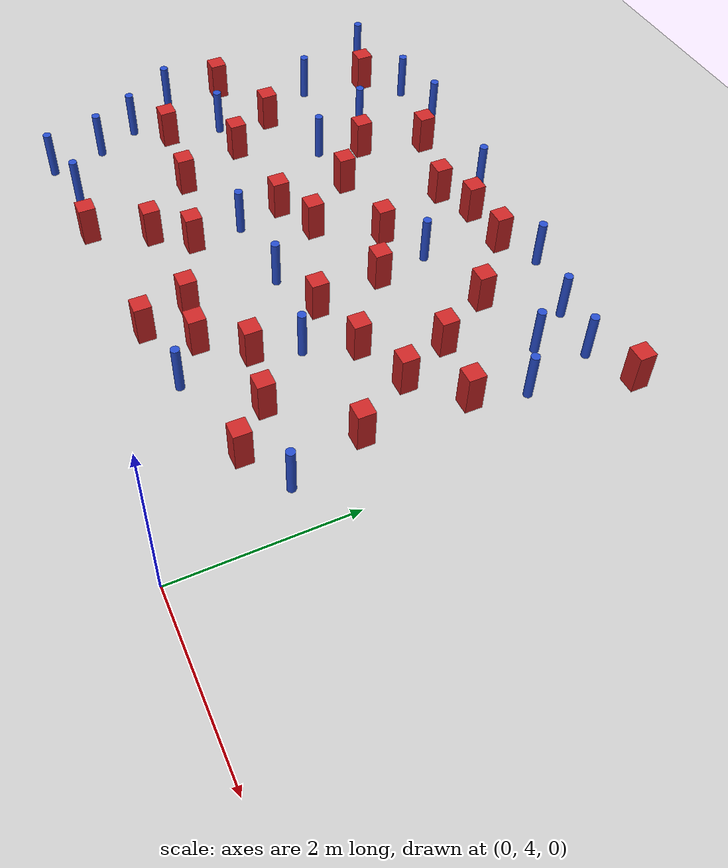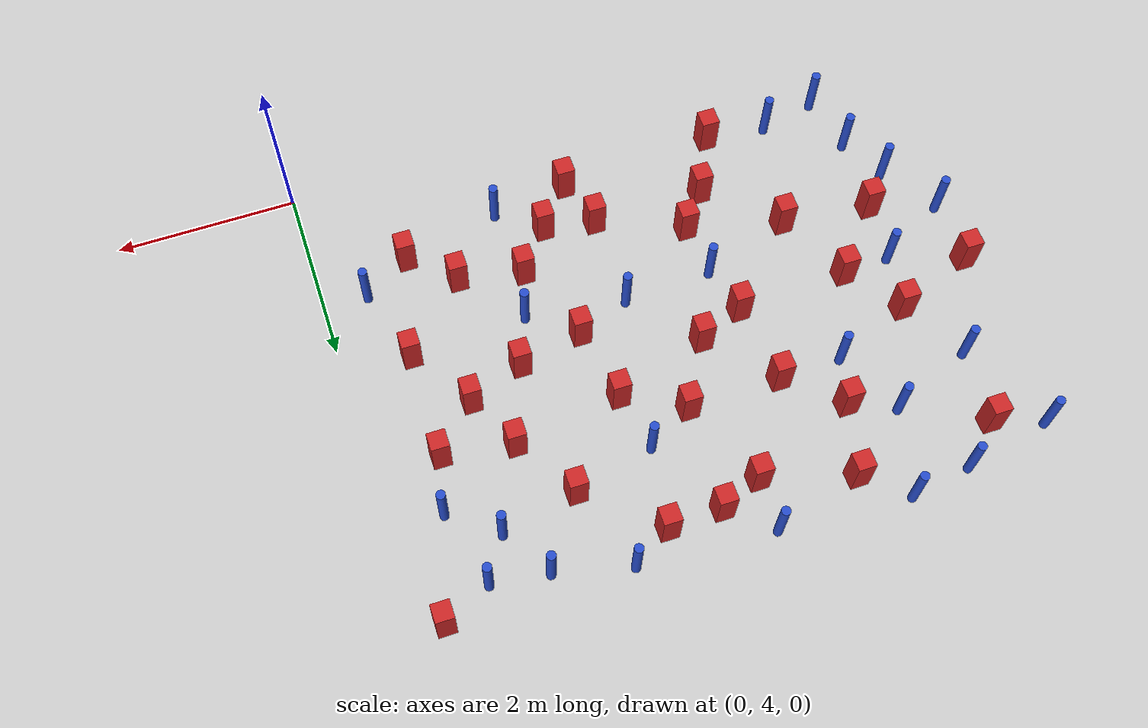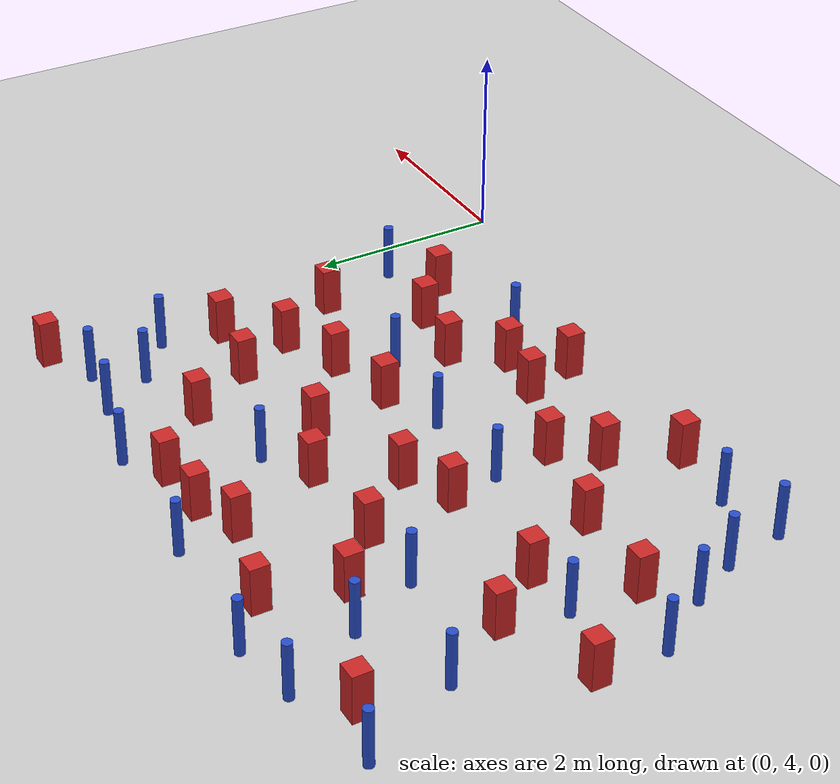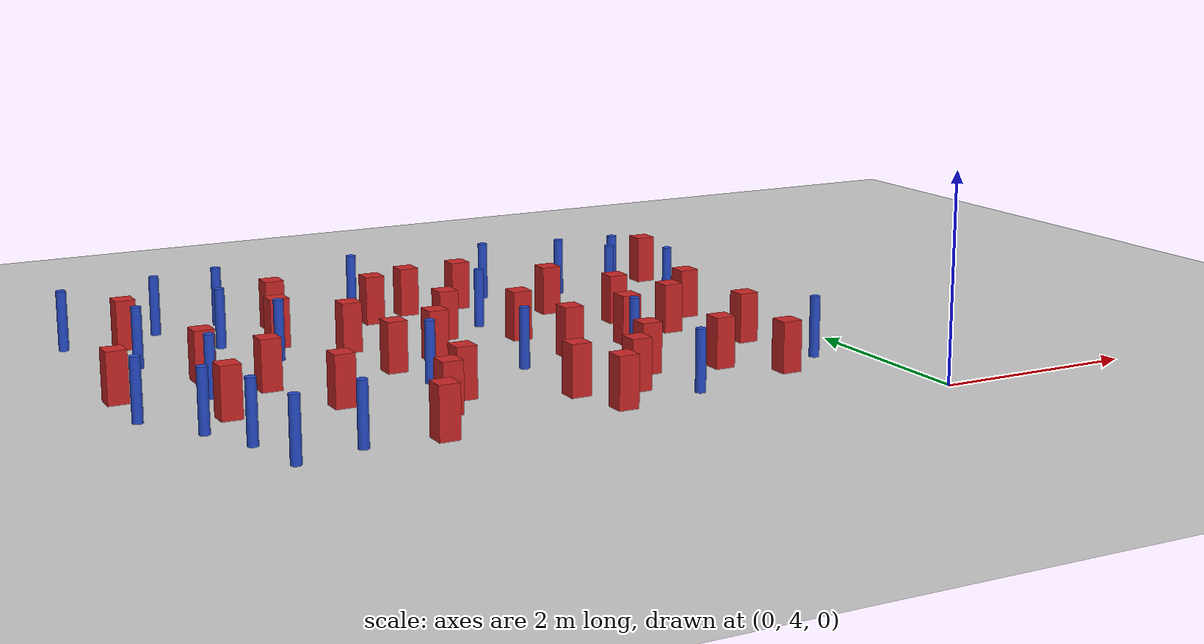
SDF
<sdf version="1.6">
 <world name="default">
  <model name="ground_plane">
   <static>1</static>
   <link name="link">
    <collision name="collision">
     <geometry><plane><normal>0 0 1</normal><size>100 100</size></plane></geometry>
     <surface><friction><ode><mu>100</mu><mu2>50</mu2></ode></friction></surface>
    </collision>
    <visual name="visual">
     <cast_shadows>0</cast_shadows>
     <geometry><plane><normal>0 0 1</normal><size>100 100</size></plane></geometry>
     <material>
      <ambient>1.0 1.0 1.0 1.0</ambient>
      <diffuse>0.8 0.8 0.8 1.0</diffuse>
      <specular>0.01 0.01 0.01 1.000000</specular>
     </material>
    </visual>
   </link>
  </model>
  <model name="square_post_obstacle1">
   <static>true</static>
   <pose>-5.54529154885 6.84833027793 8.22691968438e-08 7.2212513382e-06 -7.54495500217e-07 2.29674213826e-05</pose>
   <link name="link">
    <pose>0 0 0.25 0 -0 0</pose>
    <inertial>
     <mass>100</mass>
     <inertia>
      <ixx>0.166667</ixx>
      <ixy>0</ixy>
      <ixz>0</ixz>
      <iyy>0.166667</iyy>
      <iyz>0</iyz>
      <izz>0.166667</izz>
     </inertia>
    </inertial>
    <collision name="collision"><geometry><box><size>.2 .2 .5</size></box></geometry></collision>
    <visual name="visual">
     <geometry><box><size>.2 .2 .5</size></box></geometry>
     <material>
      <script><name>Gazebo/Red</name><uri>file://media/materials/scripts/gazebo.material</uri></script>
     </material>
    </visual>
   </link>
  </model>
  <model name="pole_obstacle4">
   <static>true</static>
   <pose>-0.492908654023 5.47763895851 2.88873142074e-08 -9.90536689758e-09 4.60219948991e-07 -1.20965994957e-07</pose>
   <link name="link">
    <pose>0 0 0.3 0 -0 0</pose>
    <inertial>
     <mass>1</mass>
     <inertia><ixx>0.145833</ixx><ixy>0</ixy><ixz>0</ixz><iyy>0.145833</iyy><iyz>0</iyz><izz>0.125</izz></inertia>
    </inertial>
    <collision name="collision">
     <geometry><cylinder><radius>0.05</radius><length>.6</length></cylinder></geometry>
    </collision>
    <visual name="visual">
     <geometry><cylinder><radius>0.05</radius><length>.6</length></cylinder></geometry>
     <material>
      <script><name>Gazebo/Blue</name><uri>file://media/materials/scripts/gazebo.material</uri></script>
     </material>
    </visual>
   </link>
  </model>
  <model name="pole_obstacle11">
   <static>true</static>
   <pose>-6.10150141757 6.80704328799 2.88873142074e-08 -9.90536690842e-09 4.60219948965e-07 -1.20965994976e-07</pose>
   <link name="link">
    <pose>0 0 0.3 0 -0 0</pose>
    <inertial>
     <mass>1</mass>
     <inertia><ixx>0.145833</ixx><ixy>0</ixy><ixz>0</ixz><iyy>0.145833</iyy><iyz>0</iyz><izz>0.125</izz></inertia>
    </inertial>
    <collision name="collision">
     <geometry><cylinder><radius>0.05</radius><length>.6</length></cylinder></geometry>
    </collision>
    <visual name="visual">
     <geometry><cylinder><radius>0.05</radius><length>.6</length></cylinder></geometry>
     <material>
      <script><name>Gazebo/Blue</name><uri>file://media/materials/scripts/gazebo.material</uri></script>
     </material>
    </visual>
   </link>
  </model>
  <model name="pole_obstacle13">
   <static>true</static>
   <pose>-1.08018354403 8.55631461394 2.88873142074e-08 -9.90536690474e-09 4.60219948974e-07 -1.2096599497e-07</pose>
   <link name="link">
    <pose>0 0 0.3 0 -0 0</pose>
    <inertial>
     <mass>1</mass>
     <inertia><ixx>0.145833</ixx><ixy>0</ixy><ixz>0</ixz><iyy>0.145833</iyy><iyz>0</iyz><izz>0.125</izz></inertia>
    </inertial>
    <collision name="collision">
     <geometry><cylinder><radius>0.05</radius><length>.6</length></cylinder></geometry>
    </collision>
    <visual name="visual">
     <geometry><cylinder><radius>0.05</radius><length>.6</length></cylinder></geometry>
     <material>
      <script><name>Gazebo/Blue</name><uri>file://media/materials/scripts/gazebo.material</uri></script>
     </material>
    </visual>
   </link>
  </model>
  <model name="pole_obstacle16">
   <static>true</static>
   <pose>-0.794665831123 9.01811968943 2.88873142074e-08 -9.90536690779e-09 4.60219948967e-07 -1.20965994975e-07</pose>
   <link name="link">
    <pose>0 0 0.3 0 -0 0</pose>
    <inertial>
     <mass>1</mass>
     <inertia><ixx>0.145833</ixx><ixy>0</ixy><ixz>0</ixz><iyy>0.145833</iyy><iyz>0</iyz><izz>0.125</izz></inertia>
    </inertial>
    <collision name="collision">
     <geometry><cylinder><radius>0.05</radius><length>.6</length></cylinder></geometry>
    </collision>
    <visual name="visual">
     <geometry><cylinder><radius>0.05</radius><length>.6</length></cylinder></geometry>
     <material>
      <script><name>Gazebo/Blue</name><uri>file://media/materials/scripts/gazebo.material</uri></script>
     </material>
    </visual>
   </link>
  </model>
  <model name="square_post_obstacle14">
   <static>true</static>
   <pose>-4.10186297762 5.75410253704 8.22691968438e-08 7.2212513382e-06 -7.54495500217e-07 2.29674213826e-05</pose>
   <link name="link">
    <pose>0 0 0.25 0 -0 0</pose>
    <inertial>
     <mass>100</mass>
     <inertia>
      <ixx>0.166667</ixx>
      <ixy>0</ixy>
      <ixz>0</ixz>
      <iyy>0.166667</iyy>
      <iyz>0</iyz>
      <izz>0.166667</izz>
     </inertia>
    </inertial>
    <collision name="collision"><geometry><box><size>.2 .2 .5</size></box></geometry></collision>
    <visual name="visual">
     <geometry><box><size>.2 .2 .5</size></box></geometry>
     <material>
      <script><name>Gazebo/Red</name><uri>file://media/materials/scripts/gazebo.material</uri></script>
     </material>
    </visual>
   </link>
  </model>
  <model name="pole_obstacle25">
   <static>true</static>
   <pose>-4.15454696403 6.35864987889 2.88873142074e-08 -9.90536690842e-09 4.60219948965e-07 -1.20965994976e-07</pose>
   <link name="link">
    <pose>0 0 0.3 0 -0 0</pose>
    <inertial>
     <mass>1</mass>
     <inertia><ixx>0.145833</ixx><ixy>0</ixy><ixz>0</ixz><iyy>0.145833</iyy><iyz>0</iyz><izz>0.125</izz></inertia>
    </inertial>
    <collision name="collision">
     <geometry><cylinder><radius>0.05</radius><length>.6</length></cylinder></geometry>
    </collision>
    <visual name="visual">
     <geometry><cylinder><radius>0.05</radius><length>.6</length></cylinder></geometry>
     <material>
      <script><name>Gazebo/Blue</name><uri>file://media/materials/scripts/gazebo.material</uri></script>
     </material>
    </visual>
   </link>
  </model>
  <model name="square_post_obstacle20">
   <static>true</static>
   <pose>-2.55179882865 6.65394247774 8.22691968438e-08 7.2212513382e-06 -7.54495500217e-07 2.29674213826e-05</pose>
   <link name="link">
    <pose>0 0 0.25 0 -0 0</pose>
    <inertial>
     <mass>100</mass>
     <inertia>
      <ixx>0.166667</ixx>
      <ixy>0</ixy>
      <ixz>0</ixz>
      <iyy>0.166667</iyy>
      <iyz>0</iyz>
      <izz>0.166667</izz>
     </inertia>
    </inertial>
    <collision name="collision"><geometry><box><size>.2 .2 .5</size></box></geometry></collision>
    <visual name="visual">
     <geometry><box><size>.2 .2 .5</size></box></geometry>
     <material>
      <script><name>Gazebo/Red</name><uri>file://media/materials/scripts/gazebo.material</uri></script>
     </material>
    </visual>
   </link>
  </model>
  <model name="square_post_obstacle21">
   <static>true</static>
   <pose>-1.82439967016 6.814209151 8.22691968438e-08 7.2212513382e-06 -7.54495500217e-07 2.29674213826e-05</pose>
   <link name="link">
    <pose>0 0 0.25 0 -0 0</pose>
    <inertial>
     <mass>100</mass>
     <inertia>
      <ixx>0.166667</ixx>
      <ixy>0</ixy>
      <ixz>0</ixz>
      <iyy>0.166667</iyy>
      <iyz>0</iyz>
      <izz>0.166667</izz>
     </inertia>
    </inertial>
    <collision name="collision"><geometry><box><size>.2 .2 .5</size></box></geometry></collision>
    <visual name="visual">
     <geometry><box><size>.2 .2 .5</size></box></geometry>
     <material>
      <script><name>Gazebo/Red</name><uri>file://media/materials/scripts/gazebo.material</uri></script>
     </material>
    </visual>
   </link>
  </model>
  <model name="square_post_obstacle24">
   <static>true</static>
   <pose>-4.93908109 8.31904062617 8.22691968438e-08 7.22125133819e-06 -7.54495500217e-07 2.29674213826e-05</pose>
   <link name="link">
    <pose>0 0 0.25 0 -0 0</pose>
    <inertial>
     <mass>100</mass>
     <inertia>
      <ixx>0.166667</ixx>
      <ixy>0</ixy>
      <ixz>0</ixz>
      <iyy>0.166667</iyy>
      <iyz>0</iyz>
      <izz>0.166667</izz>
     </inertia>
    </inertial>
    <collision name="collision"><geometry><box><size>.2 .2 .5</size></box></geometry></collision>
    <visual name="visual">
     <geometry><box><size>.2 .2 .5</size></box></geometry>
     <material>
      <script><name>Gazebo/Red</name><uri>file://media/materials/scripts/gazebo.material</uri></script>
     </material>
    </visual>
   </link>
  </model>
  <model name="pole_obstacle40">
   <static>true</static>
   <pose>-3.73343255652 9.38585894836 2.88873142074e-08 -9.9053668994e-09 4.60219948987e-07 -1.20965994963e-07</pose>
   <link name="link">
    <pose>0 0 0.3 0 -0 0</pose>
    <inertial>
     <mass>1</mass>
     <inertia><ixx>0.145833</ixx><ixy>0</ixy><ixz>0</ixz><iyy>0.145833</iyy><iyz>0</iyz><izz>0.125</izz></inertia>
    </inertial>
    <collision name="collision">
     <geometry><cylinder><radius>0.05</radius><length>.6</length></cylinder></geometry>
    </collision>
    <visual name="visual">
     <geometry><cylinder><radius>0.05</radius><length>.6</length></cylinder></geometry>
     <material>
      <script><name>Gazebo/Blue</name><uri>file://media/materials/scripts/gazebo.material</uri></script>
     </material>
    </visual>
   </link>
  </model>
  <model name="pole_obstacle50">
   <static>true</static>
   <pose>-6.10845904184 4.59116000986 2.88873142074e-08 -9.90536690842e-09 4.60219948965e-07 -1.20965994976e-07</pose>
   <link name="link">
    <pose>0 0 0.3 0 -0 0</pose>
    <inertial>
     <mass>1</mass>
     <inertia><ixx>0.145833</ixx><ixy>0</ixy><ixz>0</ixz><iyy>0.145833</iyy><iyz>0</iyz><izz>0.125</izz></inertia>
    </inertial>
    <collision name="collision">
     <geometry><cylinder><radius>0.05</radius><length>.6</length></cylinder></geometry>
    </collision>
    <visual name="visual">
     <geometry><cylinder><radius>0.05</radius><length>.6</length></cylinder></geometry>
     <material>
      <script><name>Gazebo/Blue</name><uri>file://media/materials/scripts/gazebo.material</uri></script>
     </material>
    </visual>
   </link>
  </model>
  <model name="pole_obstacle52">
   <static>true</static>
   <pose>-3.1591136819 6.41265387789 2.88873142074e-08 -9.90536689859e-09 4.60219948989e-07 -1.20965994961e-07</pose>
   <link name="link">
    <pose>0 0 0.3 0 -0 0</pose>
    <inertial>
     <mass>1</mass>
     <inertia><ixx>0.145833</ixx><ixy>0</ixy><ixz>0</ixz><iyy>0.145833</iyy><iyz>0</iyz><izz>0.125</izz></inertia>
    </inertial>
    <collision name="collision">
     <geometry><cylinder><radius>0.05</radius><length>.6</length></cylinder></geometry>
    </collision>
    <visual name="visual">
     <geometry><cylinder><radius>0.05</radius><length>.6</length></cylinder></geometry>
     <material>
      <script><name>Gazebo/Blue</name><uri>file://media/materials/scripts/gazebo.material</uri></script>
     </material>
    </visual>
   </link>
  </model>
  <model name="pole_obstacle64">
   <static>true</static>
   <pose>-6.38398138552 8.14713855058 2.88873142074e-08 -9.9053668967e-09 4.60219948993e-07 -1.20965994957e-07</pose>
   <link name="link">
    <pose>0 0 0.3 0 -0 0</pose>
    <inertial>
     <mass>1</mass>
     <inertia><ixx>0.145833</ixx><ixy>0</ixy><ixz>0</ixz><iyy>0.145833</iyy><iyz>0</iyz><izz>0.125</izz></inertia>
    </inertial>
    <collision name="collision">
     <geometry><cylinder><radius>0.05</radius><length>.6</length></cylinder></geometry>
    </collision>
    <visual name="visual">
     <geometry><cylinder><radius>0.05</radius><length>.6</length></cylinder></geometry>
     <material>
      <script><name>Gazebo/Blue</name><uri>file://media/materials/scripts/gazebo.material</uri></script>
     </material>
    </visual>
   </link>
  </model>
  <model name="pole_obstacle65">
   <static>true</static>
   <pose>-2.12537374135 4.90311877708 2.88873142074e-08 -9.90536689859e-09 4.60219948989e-07 -1.20965994961e-07</pose>
   <link name="link">
    <pose>0 0 0.3 0 -0 0</pose>
    <inertial>
     <mass>1</mass>
     <inertia><ixx>0.145833</ixx><ixy>0</ixy><ixz>0</ixz><iyy>0.145833</iyy><iyz>0</iyz><izz>0.125</izz></inertia>
    </inertial>
    <collision name="collision">
     <geometry><cylinder><radius>0.05</radius><length>.6</length></cylinder></geometry>
    </collision>
    <visual name="visual">
     <geometry><cylinder><radius>0.05</radius><length>.6</length></cylinder></geometry>
     <material>
      <script><name>Gazebo/Blue</name><uri>file://media/materials/scripts/gazebo.material</uri></script>
     </material>
    </visual>
   </link>
  </model>
  <model name="square_post_obstacle50">
   <static>true</static>
   <pose>-4.28451969857 6.91064740877 8.22691968438e-08 7.2212513382e-06 -7.54495500217e-07 2.29674213826e-05</pose>
   <link name="link">
    <pose>0 0 0.25 0 -0 0</pose>
    <inertial>
     <mass>100</mass>
     <inertia>
      <ixx>0.166667</ixx>
      <ixy>0</ixy>
      <ixz>0</ixz>
      <iyy>0.166667</iyy>
      <iyz>0</iyz>
      <izz>0.166667</izz>
     </inertia>
    </inertial>
    <collision name="collision"><geometry><box><size>.2 .2 .5</size></box></geometry></collision>
    <visual name="visual">
     <geometry><box><size>.2 .2 .5</size></box></geometry>
     <material>
      <script><name>Gazebo/Red</name><uri>file://media/materials/scripts/gazebo.material</uri></script>
     </material>
    </visual>
   </link>
  </model>
  <model name="square_post_obstacle51">
   <static>true</static>
   <pose>-1.92262672739 8.36857492444 8.22691968438e-08 7.22125133819e-06 -7.54495500217e-07 2.29674213826e-05</pose>
   <link name="link">
    <pose>0 0 0.25 0 -0 0</pose>
    <inertial>
     <mass>100</mass>
     <inertia>
      <ixx>0.166667</ixx>
      <ixy>0</ixy>
      <ixz>0</ixz>
      <iyy>0.166667</iyy>
      <iyz>0</iyz>
      <izz>0.166667</izz>
     </inertia>
    </inertial>
    <collision name="collision"><geometry><box><size>.2 .2 .5</size></box></geometry></collision>
    <visual name="visual">
     <geometry><box><size>.2 .2 .5</size></box></geometry>
     <material>
      <script><name>Gazebo/Red</name><uri>file://media/materials/scripts/gazebo.material</uri></script>
     </material>
    </visual>
   </link>
  </model>
  <model name="square_post_obstacle55">
   <static>true</static>
   <pose>-6.89286483763 7.08093674921 8.22691968438e-08 7.2212513382e-06 -7.54495500217e-07 2.29674213826e-05</pose>
   <link name="link">
    <pose>0 0 0.25 0 -0 0</pose>
    <inertial>
     <mass>100</mass>
     <inertia>
      <ixx>0.166667</ixx>
      <ixy>0</ixy>
      <ixz>0</ixz>
      <iyy>0.166667</iyy>
      <iyz>0</iyz>
      <izz>0.166667</izz>
     </inertia>
    </inertial>
    <collision name="collision"><geometry><box><size>.2 .2 .5</size></box></geometry></collision>
    <visual name="visual">
     <geometry><box><size>.2 .2 .5</size></box></geometry>
     <material>
      <script><name>Gazebo/Red</name><uri>file://media/materials/scripts/gazebo.material</uri></script>
     </material>
    </visual>
   </link>
  </model>
  <model name="pole_obstacle70">
   <static>true</static>
   <pose>-0.579571383667 8.16829904191 2.88873142074e-08 -9.90536690779e-09 4.60219948967e-07 -1.20965994975e-07</pose>
   <link name="link">
    <pose>0 0 0.3 0 -0 0</pose>
    <inertial>
     <mass>1</mass>
     <inertia><ixx>0.145833</ixx><ixy>0</ixy><ixz>0</ixz><iyy>0.145833</iyy><iyz>0</iyz><izz>0.125</izz></inertia>
    </inertial>
    <collision name="collision">
     <geometry><cylinder><radius>0.05</radius><length>.6</length></cylinder></geometry>
    </collision>
    <visual name="visual">
     <geometry><cylinder><radius>0.05</radius><length>.6</length></cylinder></geometry>
     <material>
      <script><name>Gazebo/Blue</name><uri>file://media/materials/scripts/gazebo.material</uri></script>
     </material>
    </visual>
   </link>
  </model>
  <model name="square_post_obstacle59">
   <static>true</static>
   <pose>-0.269505911228 9.26826210668 8.22691968438e-08 7.22125133819e-06 -7.54495500217e-07 2.29674213826e-05</pose>
   <link name="link">
    <pose>0 0 0.25 0 -0 0</pose>
    <inertial>
     <mass>100</mass>
     <inertia>
      <ixx>0.166667</ixx>
      <ixy>0</ixy>
      <ixz>0</ixz>
      <iyy>0.166667</iyy>
      <iyz>0</iyz>
      <izz>0.166667</izz>
     </inertia>
    </inertial>
    <collision name="collision"><geometry><box><size>.2 .2 .5</size></box></geometry></collision>
    <visual name="visual">
     <geometry><box><size>.2 .2 .5</size></box></geometry>
     <material>
      <script><name>Gazebo/Red</name><uri>file://media/materials/scripts/gazebo.material</uri></script>
     </material>
    </visual>
   </link>
  </model>
  <model name="pole_obstacle73">
   <static>true</static>
   <pose>-6.90108139714 6.35682982565 2.88873142074e-08 -9.90536690842e-09 4.60219948965e-07 -1.20965994976e-07</pose>
   <link name="link">
    <pose>0 0 0.3 0 -0 0</pose>
    <inertial>
     <mass>1</mass>
     <inertia><ixx>0.145833</ixx><ixy>0</ixy><ixz>0</ixz><iyy>0.145833</iyy><iyz>0</iyz><izz>0.125</izz></inertia>
    </inertial>
    <collision name="collision">
     <geometry><cylinder><radius>0.05</radius><length>.6</length></cylinder></geometry>
    </collision>
    <visual name="visual">
     <geometry><cylinder><radius>0.05</radius><length>.6</length></cylinder></geometry>
     <material>
      <script><name>Gazebo/Blue</name><uri>file://media/materials/scripts/gazebo.material</uri></script>
     </material>
    </visual>
   </link>
  </model>
  <model name="pole_obstacle80">
   <static>true</static>
   <pose>-1.41529642838 9.10022400847 2.88873142074e-08 -9.90536690474e-09 4.60219948974e-07 -1.2096599497e-07</pose>
   <link name="link">
    <pose>0 0 0.3 0 -0 0</pose>
    <inertial>
     <mass>1</mass>
     <inertia><ixx>0.145833</ixx><ixy>0</ixy><ixz>0</ixz><iyy>0.145833</iyy><iyz>0</iyz><izz>0.125</izz></inertia>
    </inertial>
    <collision name="collision">
     <geometry><cylinder><radius>0.05</radius><length>.6</length></cylinder></geometry>
    </collision>
    <visual name="visual">
     <geometry><cylinder><radius>0.05</radius><length>.6</length></cylinder></geometry>
     <material>
      <script><name>Gazebo/Blue</name><uri>file://media/materials/scripts/gazebo.material</uri></script>
     </material>
    </visual>
   </link>
  </model>
  <model name="square_post_obstacle70">
   <static>true</static>
   <pose>-3.15586990892 5.35690871683 8.22691968438e-08 7.2212513382e-06 -7.54495500217e-07 2.29674213826e-05</pose>
   <link name="link">
    <pose>0 0 0.25 0 -0 0</pose>
    <inertial>
     <mass>100</mass>
     <inertia>
      <ixx>0.166667</ixx>
      <ixy>0</ixy>
      <ixz>0</ixz>
      <iyy>0.166667</iyy>
      <iyz>0</iyz>
      <izz>0.166667</izz>
     </inertia>
    </inertial>
    <collision name="collision"><geometry><box><size>.2 .2 .5</size></box></geometry></collision>
    <visual name="visual">
     <geometry><box><size>.2 .2 .5</size></box></geometry>
     <material>
      <script><name>Gazebo/Red</name><uri>file://media/materials/scripts/gazebo.material</uri></script>
     </material>
    </visual>
   </link>
  </model>
  <model name="pole_obstacle86">
   <static>true</static>
   <pose>-2.24122437097 9.29643675111 2.88873142074e-08 -9.90536692318e-09 4.6021994893e-07 -1.20965994988e-07</pose>
   <link name="link">
    <pose>0 0 0.3 0 -0 0</pose>
    <inertial>
     <mass>1</mass>
     <inertia><ixx>0.145833</ixx><ixy>0</ixy><ixz>0</ixz><iyy>0.145833</iyy><iyz>0</iyz><izz>0.125</izz></inertia>
    </inertial>
    <collision name="collision">
     <geometry><cylinder><radius>0.05</radius><length>.6</length></cylinder></geometry>
    </collision>
    <visual name="visual">
     <geometry><cylinder><radius>0.05</radius><length>.6</length></cylinder></geometry>
     <material>
      <script><name>Gazebo/Blue</name><uri>file://media/materials/scripts/gazebo.material</uri></script>
     </material>
    </visual>
   </link>
  </model>
  <model name="square_post_obstacle74">
   <static>true</static>
   <pose>-4.37844938441 7.82238901426 8.22691968438e-08 7.2212513382e-06 -7.54495500217e-07 2.29674213826e-05</pose>
   <link name="link">
    <pose>0 0 0.25 0 -0 0</pose>
    <inertial>
     <mass>100</mass>
     <inertia>
      <ixx>0.166667</ixx>
      <ixy>0</ixy>
      <ixz>0</ixz>
      <iyy>0.166667</iyy>
      <iyz>0</iyz>
      <izz>0.166667</izz>
     </inertia>
    </inertial>
    <collision name="collision"><geometry><box><size>.2 .2 .5</size></box></geometry></collision>
    <visual name="visual">
     <geometry><box><size>.2 .2 .5</size></box></geometry>
     <material>
      <script><name>Gazebo/Red</name><uri>file://media/materials/scripts/gazebo.material</uri></script>
     </material>
    </visual>
   </link>
  </model>
  <model name="square_post_obstacle83">
   <static>true</static>
   <pose>-0.749945017437 6.34572843146 8.22691968438e-08 7.2212513382e-06 -7.54495500217e-07 2.29674213826e-05</pose>
   <link name="link">
    <pose>0 0 0.25 0 -0 0</pose>
    <inertial>
     <mass>100</mass>
     <inertia>
      <ixx>0.166667</ixx>
      <ixy>0</ixy>
      <ixz>0</ixz>
      <iyy>0.166667</iyy>
      <iyz>0</iyz>
      <izz>0.166667</izz>
     </inertia>
    </inertial>
    <collision name="collision"><geometry><box><size>.2 .2 .5</size></box></geometry></collision>
    <visual name="visual">
     <geometry><box><size>.2 .2 .5</size></box></geometry>
     <material>
      <script><name>Gazebo/Red</name><uri>file://media/materials/scripts/gazebo.material</uri></script>
     </material>
    </visual>
   </link>
  </model>
  <model name="square_post_obstacle85">
   <static>true</static>
   <pose>-5.15505483856 6.02081783109 8.22691968438e-08 7.22125133819e-06 -7.54495500217e-07 2.29674213826e-05</pose>
   <link name="link">
    <pose>0 0 0.25 0 -0 0</pose>
    <inertial>
     <mass>100</mass>
     <inertia>
      <ixx>0.166667</ixx>
      <ixy>0</ixy>
      <ixz>0</ixz>
      <iyy>0.166667</iyy>
      <iyz>0</iyz>
      <izz>0.166667</izz>
     </inertia>
    </inertial>
    <collision name="collision"><geometry><box><size>.2 .2 .5</size></box></geometry></collision>
    <visual name="visual">
     <geometry><box><size>.2 .2 .5</size></box></geometry>
     <material>
      <script><name>Gazebo/Red</name><uri>file://media/materials/scripts/gazebo.material</uri></script>
     </material>
    </visual>
   </link>
  </model>
  <model name="square_post_obstacle87">
   <static>true</static>
   <pose>-3.73507794381 8.81189947941 8.22691968438e-08 7.22125133819e-06 -7.54495500217e-07 2.29674213826e-05</pose>
   <link name="link">
    <pose>0 0 0.25 0 -0 0</pose>
    <inertial>
     <mass>100</mass>
     <inertia>
      <ixx>0.166667</ixx>
      <ixy>0</ixy>
      <ixz>0</ixz>
      <iyy>0.166667</iyy>
      <iyz>0</iyz>
      <izz>0.166667</izz>
     </inertia>
    </inertial>
    <collision name="collision"><geometry><box><size>.2 .2 .5</size></box></geometry></collision>
    <visual name="visual">
     <geometry><box><size>.2 .2 .5</size></box></geometry>
     <material>
      <script><name>Gazebo/Red</name><uri>file://media/materials/scripts/gazebo.material</uri></script>
     </material>
    </visual>
   </link>
  </model>
  <model name="square_post_obstacle90">
   <static>true</static>
   <pose>-4.4221613261 5.34755595263 8.22691968438e-08 7.2212513382e-06 -7.54495500217e-07 2.29674213826e-05</pose>
   <link name="link">
    <pose>0 0 0.25 0 -0 0</pose>
    <inertial>
     <mass>100</mass>
     <inertia>
      <ixx>0.166667</ixx>
      <ixy>0</ixy>
      <ixz>0</ixz>
      <iyy>0.166667</iyy>
      <iyz>0</iyz>
      <izz>0.166667</izz>
     </inertia>
    </inertial>
    <collision name="collision"><geometry><box><size>.2 .2 .5</size></box></geometry></collision>
    <visual name="visual">
     <geometry><box><size>.2 .2 .5</size></box></geometry>
     <material>
      <script><name>Gazebo/Red</name><uri>file://media/materials/scripts/gazebo.material</uri></script>
     </material>
    </visual>
   </link>
  </model>
  <model name="square_post_obstacle95">
   <static>true</static>
   <pose>-4.75533411702 4.6796058299 8.22691968438e-08 7.2212513382e-06 -7.54495500217e-07 2.29674213826e-05</pose>
   <link name="link">
    <pose>0 0 0.25 0 -0 0</pose>
    <inertial>
     <mass>100</mass>
     <inertia>
      <ixx>0.166667</ixx>
      <ixy>0</ixy>
      <ixz>0</ixz>
      <iyy>0.166667</iyy>
      <iyz>0</iyz>
      <izz>0.166667</izz>
     </inertia>
    </inertial>
    <collision name="collision"><geometry><box><size>.2 .2 .5</size></box></geometry></collision>
    <visual name="visual">
     <geometry><box><size>.2 .2 .5</size></box></geometry>
     <material>
      <script><name>Gazebo/Red</name><uri>file://media/materials/scripts/gazebo.material</uri></script>
     </material>
    </visual>
   </link>
  </model>
  <model name="pole_obstacle109">
   <static>true</static>
   <pose>-6.84049456395 9.15790701009 2.88873142074e-08 -9.9053668967e-09 4.60219948993e-07 -1.20965994957e-07</pose>
   <link name="link">
    <pose>0 0 0.3 0 -0 0</pose>
    <inertial>
     <mass>1</mass>
     <inertia><ixx>0.145833</ixx><ixy>0</ixy><ixz>0</ixz><iyy>0.145833</iyy><iyz>0</iyz><izz>0.125</izz></inertia>
    </inertial>
    <collision name="collision">
     <geometry><cylinder><radius>0.05</radius><length>.6</length></cylinder></geometry>
    </collision>
    <visual name="visual">
     <geometry><cylinder><radius>0.05</radius><length>.6</length></cylinder></geometry>
     <material>
      <script><name>Gazebo/Blue</name><uri>file://media/materials/scripts/gazebo.material</uri></script>
     </material>
    </visual>
   </link>
  </model>
  <model name="square_post_obstacle114">
   <static>true</static>
   <pose>-4.71636205534 9.09772463199 8.22691968438e-08 7.22125133819e-06 -7.54495500217e-07 2.29674213826e-05</pose>
   <link name="link">
    <pose>0 0 0.25 0 -0 0</pose>
    <inertial>
     <mass>100</mass>
     <inertia>
      <ixx>0.166667</ixx>
      <ixy>0</ixy>
      <ixz>0</ixz>
      <iyy>0.166667</iyy>
      <iyz>0</iyz>
      <izz>0.166667</izz>
     </inertia>
    </inertial>
    <collision name="collision"><geometry><box><size>.2 .2 .5</size></box></geometry></collision>
    <visual name="visual">
     <geometry><box><size>.2 .2 .5</size></box></geometry>
     <material>
      <script><name>Gazebo/Red</name><uri>file://media/materials/scripts/gazebo.material</uri></script>
     </material>
    </visual>
   </link>
  </model>
  <model name="pole_obstacle127">
   <static>true</static>
   <pose>-5.86040204683 9.36497220351 2.88873142074e-08 -9.9053668967e-09 4.60219948993e-07 -1.20965994957e-07</pose>
   <link name="link">
    <pose>0 0 0.3 0 -0 0</pose>
    <inertial>
     <mass>1</mass>
     <inertia><ixx>0.145833</ixx><ixy>0</ixy><ixz>0</ixz><iyy>0.145833</iyy><iyz>0</iyz><izz>0.125</izz></inertia>
    </inertial>
    <collision name="collision">
     <geometry><cylinder><radius>0.05</radius><length>.6</length></cylinder></geometry>
    </collision>
    <visual name="visual">
     <geometry><cylinder><radius>0.05</radius><length>.6</length></cylinder></geometry>
     <material>
      <script><name>Gazebo/Blue</name><uri>file://media/materials/scripts/gazebo.material</uri></script>
     </material>
    </visual>
   </link>
  </model>
  <model name="square_post_obstacle123">
   <static>true</static>
   <pose>-2.69437758487 7.48644754535 8.22691968438e-08 7.2212513382e-06 -7.54495500217e-07 2.29674213826e-05</pose>
   <link name="link">
    <pose>0 0 0.25 0 -0 0</pose>
    <inertial>
     <mass>100</mass>
     <inertia>
      <ixx>0.166667</ixx>
      <ixy>0</ixy>
      <ixz>0</ixz>
      <iyy>0.166667</iyy>
      <iyz>0</iyz>
      <izz>0.166667</izz>
     </inertia>
    </inertial>
    <collision name="collision"><geometry><box><size>.2 .2 .5</size></box></geometry></collision>
    <visual name="visual">
     <geometry><box><size>.2 .2 .5</size></box></geometry>
     <material>
      <script><name>Gazebo/Red</name><uri>file://media/materials/scripts/gazebo.material</uri></script>
     </material>
    </visual>
   </link>
  </model>
  <model name="square_post_obstacle131">
   <static>true</static>
   <pose>-1.02083387138 5.16354813502 8.22691968438e-08 7.2212513382e-06 -7.54495500217e-07 2.29674213826e-05</pose>
   <link name="link">
    <pose>0 0 0.25 0 -0 0</pose>
    <inertial>
     <mass>100</mass>
     <inertia>
      <ixx>0.166667</ixx>
      <ixy>0</ixy>
      <ixz>0</ixz>
      <iyy>0.166667</iyy>
      <iyz>0</iyz>
      <izz>0.166667</izz>
     </inertia>
    </inertial>
    <collision name="collision"><geometry><box><size>.2 .2 .5</size></box></geometry></collision>
    <visual name="visual">
     <geometry><box><size>.2 .2 .5</size></box></geometry>
     <material>
      <script><name>Gazebo/Red</name><uri>file://media/materials/scripts/gazebo.material</uri></script>
     </material>
    </visual>
   </link>
  </model>
  <model name="pole_obstacle133">
   <static>true</static>
   <pose>-5.46525248664 4.74207139234 2.88873142074e-08 -9.90536690842e-09 4.60219948965e-07 -1.20965994976e-07</pose>
   <link name="link">
    <pose>0 0 0.3 0 -0 0</pose>
    <inertial>
     <mass>1</mass>
     <inertia><ixx>0.145833</ixx><ixy>0</ixy><ixz>0</ixz><iyy>0.145833</iyy><iyz>0</iyz><izz>0.125</izz></inertia>
    </inertial>
    <collision name="collision">
     <geometry><cylinder><radius>0.05</radius><length>.6</length></cylinder></geometry>
    </collision>
    <visual name="visual">
     <geometry><cylinder><radius>0.05</radius><length>.6</length></cylinder></geometry>
     <material>
      <script><name>Gazebo/Blue</name><uri>file://media/materials/scripts/gazebo.material</uri></script>
     </material>
    </visual>
   </link>
  </model>
  <model name="pole_obstacle139">
   <static>true</static>
   <pose>-6.49856605537 5.75373637629 2.88873142074e-08 -9.90536690842e-09 4.60219948965e-07 -1.20965994976e-07</pose>
   <link name="link">
    <pose>0 0 0.3 0 -0 0</pose>
    <inertial>
     <mass>1</mass>
     <inertia><ixx>0.145833</ixx><ixy>0</ixy><ixz>0</ixz><iyy>0.145833</iyy><iyz>0</iyz><izz>0.125</izz></inertia>
    </inertial>
    <collision name="collision">
     <geometry><cylinder><radius>0.05</radius><length>.6</length></cylinder></geometry>
    </collision>
    <visual name="visual">
     <geometry><cylinder><radius>0.05</radius><length>.6</length></cylinder></geometry>
     <material>
      <script><name>Gazebo/Blue</name><uri>file://media/materials/scripts/gazebo.material</uri></script>
     </material>
    </visual>
   </link>
  </model>
  <model name="square_post_obstacle139">
   <static>true</static>
   <pose>-3.76394667974 7.13347214722 8.22691968438e-08 7.2212513382e-06 -7.54495500217e-07 2.29674213826e-05</pose>
   <link name="link">
    <pose>0 0 0.25 0 -0 0</pose>
    <inertial>
     <mass>100</mass>
     <inertia>
      <ixx>0.166667</ixx>
      <ixy>0</ixy>
      <ixz>0</ixz>
      <iyy>0.166667</iyy>
      <iyz>0</iyz>
      <izz>0.166667</izz>
     </inertia>
    </inertial>
    <collision name="collision"><geometry><box><size>.2 .2 .5</size></box></geometry></collision>
    <visual name="visual">
     <geometry><box><size>.2 .2 .5</size></box></geometry>
     <material>
      <script><name>Gazebo/Red</name><uri>file://media/materials/scripts/gazebo.material</uri></script>
     </material>
    </visual>
   </link>
  </model>
  <model name="square_post_obstacle143">
   <static>true</static>
   <pose>-1.20411095118 7.05638794278 8.22691968438e-08 7.2212513382e-06 -7.54495500217e-07 2.29674213826e-05</pose>
   <link name="link">
    <pose>0 0 0.25 0 -0 0</pose>
    <inertial>
     <mass>100</mass>
     <inertia>
      <ixx>0.166667</ixx>
      <ixy>0</ixy>
      <ixz>0</ixz>
      <iyy>0.166667</iyy>
      <iyz>0</iyz>
      <izz>0.166667</izz>
     </inertia>
    </inertial>
    <collision name="collision"><geometry><box><size>.2 .2 .5</size></box></geometry></collision>
    <visual name="visual">
     <geometry><box><size>.2 .2 .5</size></box></geometry>
     <material>
      <script><name>Gazebo/Red</name><uri>file://media/materials/scripts/gazebo.material</uri></script>
     </material>
    </visual>
   </link>
  </model>
  <model name="square_post_obstacle151">
   <static>true</static>
   <pose>-3.33969205303 7.84545233357 8.22691968438e-08 7.2212513382e-06 -7.54495500217e-07 2.29674213826e-05</pose>
   <link name="link">
    <pose>0 0 0.25 0 -0 0</pose>
    <inertial>
     <mass>100</mass>
     <inertia>
      <ixx>0.166667</ixx>
      <ixy>0</ixy>
      <ixz>0</ixz>
      <iyy>0.166667</iyy>
      <iyz>0</iyz>
      <izz>0.166667</izz>
     </inertia>
    </inertial>
    <collision name="collision"><geometry><box><size>.2 .2 .5</size></box></geometry></collision>
    <visual name="visual">
     <geometry><box><size>.2 .2 .5</size></box></geometry>
     <material>
      <script><name>Gazebo/Red</name><uri>file://media/materials/scripts/gazebo.material</uri></script>
     </material>
    </visual>
   </link>
  </model>
  <model name="square_post_obstacle152">
   <static>true</static>
   <pose>-2.20506415622 5.73701185634 8.22691968438e-08 7.2212513382e-06 -7.54495500217e-07 2.29674213826e-05</pose>
   <link name="link">
    <pose>0 0 0.25 0 -0 0</pose>
    <inertial>
     <mass>100</mass>
     <inertia>
      <ixx>0.166667</ixx>
      <ixy>0</ixy>
      <ixz>0</ixz>
      <iyy>0.166667</iyy>
      <iyz>0</iyz>
      <izz>0.166667</izz>
     </inertia>
    </inertial>
    <collision name="collision"><geometry><box><size>.2 .2 .5</size></box></geometry></collision>
    <visual name="visual">
     <geometry><box><size>.2 .2 .5</size></box></geometry>
     <material>
      <script><name>Gazebo/Red</name><uri>file://media/materials/scripts/gazebo.material</uri></script>
     </material>
    </visual>
   </link>
  </model>
  <model name="square_post_obstacle153">
   <static>true</static>
   <pose>-2.67222359756 9.02788201771 8.22691968438e-08 7.22125133819e-06 -7.54495500217e-07 2.29674213826e-05</pose>
   <link name="link">
    <pose>0 0 0.25 0 -0 0</pose>
    <inertial>
     <mass>100</mass>
     <inertia>
      <ixx>0.166667</ixx>
      <ixy>0</ixy>
      <ixz>0</ixz>
      <iyy>0.166667</iyy>
      <iyz>0</iyz>
      <izz>0.166667</izz>
     </inertia>
    </inertial>
    <collision name="collision"><geometry><box><size>.2 .2 .5</size></box></geometry></collision>
    <visual name="visual">
     <geometry><box><size>.2 .2 .5</size></box></geometry>
     <material>
      <script><name>Gazebo/Red</name><uri>file://media/materials/scripts/gazebo.material</uri></script>
     </material>
    </visual>
   </link>
  </model>
  <model name="pole_obstacle163">
   <static>true</static>
   <pose>-5.17844586372 9.47800147253 2.88873142074e-08 -9.9053668967e-09 4.60219948993e-07 -1.20965994957e-07</pose>
   <link name="link">
    <pose>0 0 0.3 0 -0 0</pose>
    <inertial>
     <mass>1</mass>
     <inertia><ixx>0.145833</ixx><ixy>0</ixy><ixz>0</ixz><iyy>0.145833</iyy><iyz>0</iyz><izz>0.125</izz></inertia>
    </inertial>
    <collision name="collision">
     <geometry><cylinder><radius>0.05</radius><length>.6</length></cylinder></geometry>
    </collision>
    <visual name="visual">
     <geometry><cylinder><radius>0.05</radius><length>.6</length></cylinder></geometry>
     <material>
      <script><name>Gazebo/Blue</name><uri>file://media/materials/scripts/gazebo.material</uri></script>
     </material>
    </visual>
   </link>
  </model>
  <model name="square_post_obstacle165">
   <static>true</static>
   <pose>-1.49592002385 7.67489240629 8.22691968438e-08 7.2212513382e-06 -7.54495500217e-07 2.29674213826e-05</pose>
   <link name="link">
    <pose>0 0 0.25 0 -0 0</pose>
    <inertial>
     <mass>100</mass>
     <inertia>
      <ixx>0.166667</ixx>
      <ixy>0</ixy>
      <ixz>0</ixz>
      <iyy>0.166667</iyy>
      <iyz>0</iyz>
      <izz>0.166667</izz>
     </inertia>
    </inertial>
    <collision name="collision"><geometry><box><size>.2 .2 .5</size></box></geometry></collision>
    <visual name="visual">
     <geometry><box><size>.2 .2 .5</size></box></geometry>
     <material>
      <script><name>Gazebo/Red</name><uri>file://media/materials/scripts/gazebo.material</uri></script>
     </material>
    </visual>
   </link>
  </model>
  <model name="square_post_obstacle166">
   <static>true</static>
   <pose>-1.48715117283 5.59547879636 8.22691968438e-08 7.2212513382e-06 -7.54495500217e-07 2.29674213826e-05</pose>
   <link name="link">
    <pose>0 0 0.25 0 -0 0</pose>
    <inertial>
     <mass>100</mass>
     <inertia>
      <ixx>0.166667</ixx>
      <ixy>0</ixy>
      <ixz>0</ixz>
      <iyy>0.166667</iyy>
      <iyz>0</iyz>
      <izz>0.166667</izz>
     </inertia>
    </inertial>
    <collision name="collision"><geometry><box><size>.2 .2 .5</size></box></geometry></collision>
    <visual name="visual">
     <geometry><box><size>.2 .2 .5</size></box></geometry>
     <material>
      <script><name>Gazebo/Red</name><uri>file://media/materials/scripts/gazebo.material</uri></script>
     </material>
    </visual>
   </link>
  </model>
  <model name="square_post_obstacle169">
   <static>true</static>
   <pose>-0.72173775944 7.55250172935 8.22691968438e-08 7.2212513382e-06 -7.54495500217e-07 2.29674213826e-05</pose>
   <link name="link">
    <pose>0 0 0.25 0 -0 0</pose>
    <inertial>
     <mass>100</mass>
     <inertia>
      <ixx>0.166667</ixx>
      <ixy>0</ixy>
      <ixz>0</ixz>
      <iyy>0.166667</iyy>
      <iyz>0</iyz>
      <izz>0.166667</izz>
     </inertia>
    </inertial>
    <collision name="collision"><geometry><box><size>.2 .2 .5</size></box></geometry></collision>
    <visual name="visual">
     <geometry><box><size>.2 .2 .5</size></box></geometry>
     <material>
      <script><name>Gazebo/Red</name><uri>file://media/materials/scripts/gazebo.material</uri></script>
     </material>
    </visual>
   </link>
  </model>
  <model name="pole_obstacle174">
   <static>true</static>
   <pose>-2.05227300258 6.25949677055 2.88873142074e-08 -9.90536689859e-09 4.60219948989e-07 -1.20965994961e-07</pose>
   <link name="link">
    <pose>0 0 0.3 0 -0 0</pose>
    <inertial>
     <mass>1</mass>
     <inertia><ixx>0.145833</ixx><ixy>0</ixy><ixz>0</ixz><iyy>0.145833</iyy><iyz>0</iyz><izz>0.125</izz></inertia>
    </inertial>
    <collision name="collision">
     <geometry><cylinder><radius>0.05</radius><length>.6</length></cylinder></geometry>
    </collision>
    <visual name="visual">
     <geometry><cylinder><radius>0.05</radius><length>.6</length></cylinder></geometry>
     <material>
      <script><name>Gazebo/Blue</name><uri>file://media/materials/scripts/gazebo.material</uri></script>
     </material>
    </visual>
   </link>
  </model>
  <model name="square_post_obstacle175">
   <static>true</static>
   <pose>-5.97742140664 7.44397118563 8.22691968438e-08 7.22125133819e-06 -7.54495500217e-07 2.29674213826e-05</pose>
   <link name="link">
    <pose>0 0 0.25 0 -0 0</pose>
    <inertial>
     <mass>100</mass>
     <inertia>
      <ixx>0.166667</ixx>
      <ixy>0</ixy>
      <ixz>0</ixz>
      <iyy>0.166667</iyy>
      <iyz>0</iyz>
      <izz>0.166667</izz>
     </inertia>
    </inertial>
    <collision name="collision"><geometry><box><size>.2 .2 .5</size></box></geometry></collision>
    <visual name="visual">
     <geometry><box><size>.2 .2 .5</size></box></geometry>
     <material>
      <script><name>Gazebo/Red</name><uri>file://media/materials/scripts/gazebo.material</uri></script>
     </material>
    </visual>
   </link>
  </model>
  <model name="pole_obstacle181">
   <static>true</static>
   <pose>-5.10046299429 7.79785768414 2.88873142074e-08 -9.90536690842e-09 4.60219948965e-07 -1.20965994976e-07</pose>
   <link name="link">
    <pose>0 0 0.3 0 -0 0</pose>
    <inertial>
     <mass>1</mass>
     <inertia><ixx>0.145833</ixx><ixy>0</ixy><ixz>0</ixz><iyy>0.145833</iyy><iyz>0</iyz><izz>0.125</izz></inertia>
    </inertial>
    <collision name="collision">
     <geometry><cylinder><radius>0.05</radius><length>.6</length></cylinder></geometry>
    </collision>
    <visual name="visual">
     <geometry><cylinder><radius>0.05</radius><length>.6</length></cylinder></geometry>
     <material>
      <script><name>Gazebo/Blue</name><uri>file://media/materials/scripts/gazebo.material</uri></script>
     </material>
    </visual>
   </link>
  </model>
  <model name="square_post_obstacle183">
   <static>true</static>
   <pose>-6.16056915398 6.13064551793 8.22691968438e-08 7.2212513382e-06 -7.54495500217e-07 2.29674213826e-05</pose>
   <link name="link">
    <pose>0 0 0.25 0 -0 0</pose>
    <inertial>
     <mass>100</mass>
     <inertia>
      <ixx>0.166667</ixx>
      <ixy>0</ixy>
      <ixz>0</ixz>
      <iyy>0.166667</iyy>
      <iyz>0</iyz>
      <izz>0.166667</izz>
     </inertia>
    </inertial>
    <collision name="collision"><geometry><box><size>.2 .2 .5</size></box></geometry></collision>
    <visual name="visual">
     <geometry><box><size>.2 .2 .5</size></box></geometry>
     <material>
      <script><name>Gazebo/Red</name><uri>file://media/materials/scripts/gazebo.material</uri></script>
     </material>
    </visual>
   </link>
  </model>
  <model name="pole_obstacle191">
   <static>true</static>
   <pose>-2.82799265666 8.13376776881 2.88873142074e-08 -9.90536692318e-09 4.6021994893e-07 -1.20965994988e-07</pose>
   <link name="link">
    <pose>0 0 0.3 0 -0 0</pose>
    <inertial>
     <mass>1</mass>
     <inertia><ixx>0.145833</ixx><ixy>0</ixy><ixz>0</ixz><iyy>0.145833</iyy><iyz>0</iyz><izz>0.125</izz></inertia>
    </inertial>
    <collision name="collision">
     <geometry><cylinder><radius>0.05</radius><length>.6</length></cylinder></geometry>
    </collision>
    <visual name="visual">
     <geometry><cylinder><radius>0.05</radius><length>.6</length></cylinder></geometry>
     <material>
      <script><name>Gazebo/Blue</name><uri>file://media/materials/scripts/gazebo.material</uri></script>
     </material>
    </visual>
   </link>
  </model>
  <model name="pole_obstacle198">
   <static>true</static>
   <pose>-5.44665326013 8.5316477939 2.88873142074e-08 -9.9053668967e-09 4.60219948993e-07 -1.20965994957e-07</pose>
   <link name="link">
    <pose>0 0 0.3 0 -0 0</pose>
    <inertial>
     <mass>1</mass>
     <inertia><ixx>0.145833</ixx><ixy>0</ixy><ixz>0</ixz><iyy>0.145833</iyy><iyz>0</iyz><izz>0.125</izz></inertia>
    </inertial>
    <collision name="collision">
     <geometry><cylinder><radius>0.05</radius><length>.6</length></cylinder></geometry>
    </collision>
    <visual name="visual">
     <geometry><cylinder><radius>0.05</radius><length>.6</length></cylinder></geometry>
     <material>
      <script><name>Gazebo/Blue</name><uri>file://media/materials/scripts/gazebo.material</uri></script>
     </material>
    </visual>
   </link>
  </model>
  <model name="pole_obstacle207">
   <static>true</static>
   <pose>-6.24674749039 5.24610392998 2.88873142074e-08 -9.90536690842e-09 4.60219948965e-07 -1.20965994976e-07</pose>
   <link name="link">
    <pose>0 0 0.3 0 -0 0</pose>
    <inertial>
     <mass>1</mass>
     <inertia><ixx>0.145833</ixx><ixy>0</ixy><ixz>0</ixz><iyy>0.145833</iyy><iyz>0</iyz><izz>0.125</izz></inertia>
    </inertial>
    <collision name="collision">
     <geometry><cylinder><radius>0.05</radius><length>.6</length></cylinder></geometry>
    </collision>
    <visual name="visual">
     <geometry><cylinder><radius>0.05</radius><length>.6</length></cylinder></geometry>
     <material>
      <script><name>Gazebo/Blue</name><uri>file://media/materials/scripts/gazebo.material</uri></script>
     </material>
    </visual>
   </link>
  </model>
  <model name="square_post_obstacle207">
   <static>true</static>
   <pose>-6.28890039438 8.96403941608 8.22691968438e-08 7.22125133819e-06 -7.54495500217e-07 2.29674213826e-05</pose>
   <link name="link">
    <pose>0 0 0.25 0 -0 0</pose>
    <inertial>
     <mass>100</mass>
     <inertia>
      <ixx>0.166667</ixx>
      <ixy>0</ixy>
      <ixz>0</ixz>
      <iyy>0.166667</iyy>
      <iyz>0</iyz>
      <izz>0.166667</izz>
     </inertia>
    </inertial>
    <collision name="collision"><geometry><box><size>.2 .2 .5</size></box></geometry></collision>
    <visual name="visual">
     <geometry><box><size>.2 .2 .5</size></box></geometry>
     <material>
      <script><name>Gazebo/Red</name><uri>file://media/materials/scripts/gazebo.material</uri></script>
     </material>
    </visual>
   </link>
  </model>
  <model name="square_post_obstacle222">
   <static>true</static>
   <pose>-2.98285996738 4.79301996466 8.22691968438e-08 7.2212513382e-06 -7.54495500217e-07 2.29674213826e-05</pose>
   <link name="link">
    <pose>0 0 0.25 0 -0 0</pose>
    <inertial>
     <mass>100</mass>
     <inertia>
      <ixx>0.166667</ixx>
      <ixy>0</ixy>
      <ixz>0</ixz>
      <iyy>0.166667</iyy>
      <iyz>0</iyz>
      <izz>0.166667</izz>
     </inertia>
    </inertial>
    <collision name="collision"><geometry><box><size>.2 .2 .5</size></box></geometry></collision>
    <visual name="visual">
     <geometry><box><size>.2 .2 .5</size></box></geometry>
     <material>
      <script><name>Gazebo/Red</name><uri>file://media/materials/scripts/gazebo.material</uri></script>
     </material>
    </visual>
   </link>
  </model>
  <model name="square_post_obstacle228">
   <static>true</static>
   <pose>-3.27255996738 9.00227996466 8.22691968438e-08 7.22125133819e-06 -7.54495500217e-07 2.29674213826e-05</pose>
   <link name="link">
    <pose>0 0 0.25 0 -0 0</pose>
    <inertial>
     <mass>100</mass>
     <inertia>
      <ixx>0.166667</ixx>
      <ixy>0</ixy>
      <ixz>0</ixz>
      <iyy>0.166667</iyy>
      <iyz>0</iyz>
      <izz>0.166667</izz>
     </inertia>
    </inertial>
    <collision name="collision"><geometry><box><size>.2 .2 .5</size></box></geometry></collision>
    <visual name="visual">
     <geometry><box><size>.2 .2 .5</size></box></geometry>
     <material>
      <script><name>Gazebo/Red</name><uri>file://media/materials/scripts/gazebo.material</uri></script>
     </material>
    </visual>
   </link>
  </model>
  <model name="square_post_obstacle233">
   <static>true</static>
   <pose>-2.58626996738 5.26166996466 8.22691968438e-08 7.22125133819e-06 -7.54495500217e-07 2.29674213826e-05</pose>
   <link name="link">
    <pose>0 0 0.25 0 -0 0</pose>
    <inertial>
     <mass>100</mass>
     <inertia>
      <ixx>0.166667</ixx>
      <ixy>0</ixy>
      <ixz>0</ixz>
      <iyy>0.166667</iyy>
      <iyz>0</iyz>
      <izz>0.166667</izz>
     </inertia>
    </inertial>
    <collision name="collision"><geometry><box><size>.2 .2 .5</size></box></geometry></collision>
    <visual name="visual">
     <geometry><box><size>.2 .2 .5</size></box></geometry>
     <material>
      <script><name>Gazebo/Red</name><uri>file://media/materials/scripts/gazebo.material</uri></script>
     </material>
    </visual>
   </link>
  </model>
 </world>
</sdf>
